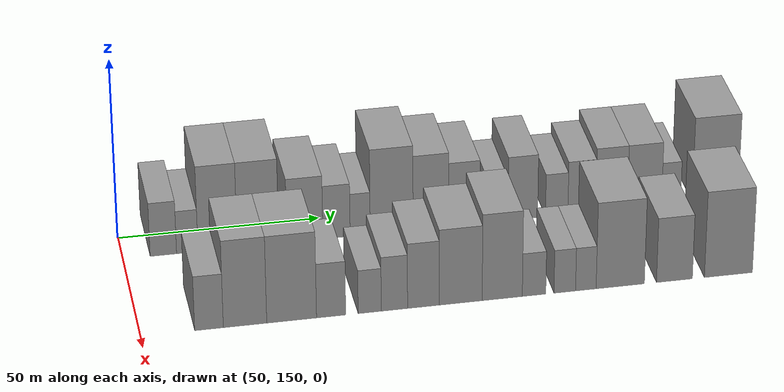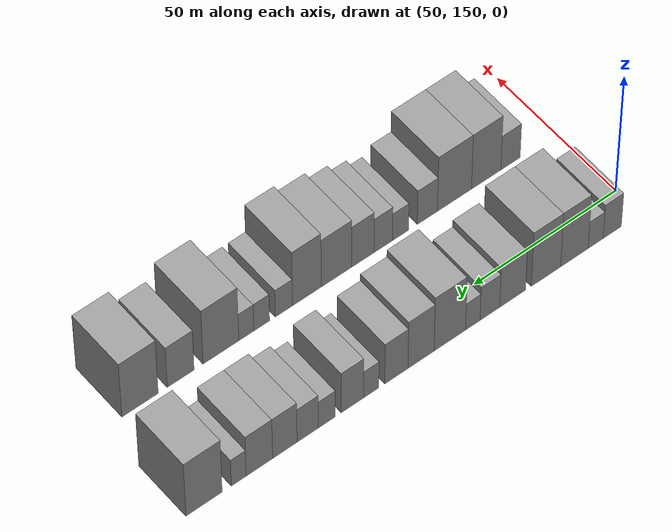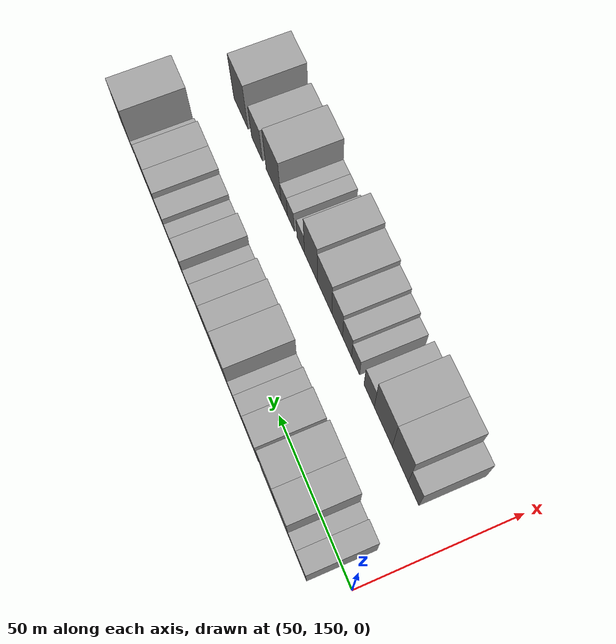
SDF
<sdf version="1.6">
 <world name="default">
  <model name="building_49">
   <static>1</static>
   <pose>50.0000 159.9098 0 0.000000 0.000000 0.000000</pose>
   <link name="link">
    <pose>0 0 7.50 0 0 0</pose>
    <collision name="collision"><geometry><box><size>20.0000 6.4904 15.0000</size></box></geometry></collision>
    <visual name="visual">
     <cast_shadows>0</cast_shadows>
     <geometry><box><size>20.0000 6.4904 15.0000</size></box></geometry>
     <material>
      <script>
       <uri>model://grey_wall/materials/scripts</uri>
       <uri>model://grey_wall/materials/textures</uri>
       <name>vrc/grey_wall</name>
      </script>
     </material>
    </visual>
   </link>
  </model>
  <model name="building_50">
   <static>1</static>
   <pose>50.0000 165.7924 0 0.000000 0.000000 0.000000</pose>
   <link name="link">
    <pose>0 0 6.00 0 0 0</pose>
    <collision name="collision"><geometry><box><size>20.0000 5.2749 12.0000</size></box></geometry></collision>
    <visual name="visual">
     <cast_shadows>0</cast_shadows>
     <geometry><box><size>20.0000 5.2749 12.0000</size></box></geometry>
     <material>
      <script>
       <uri>model://grey_wall/materials/scripts</uri>
       <uri>model://grey_wall/materials/textures</uri>
       <name>vrc/grey_wall</name>
      </script>
     </material>
    </visual>
   </link>
  </model>
  <model name="building_51">
   <static>1</static>
   <pose>50.0000 173.2698 0 0.000000 0.000000 0.000000</pose>
   <link name="link">
    <pose>0 0 12.00 0 0 0</pose>
    <collision name="collision"><geometry><box><size>20.0000 9.6800 24.0000</size></box></geometry></collision>
    <visual name="visual">
     <cast_shadows>0</cast_shadows>
     <geometry><box><size>20.0000 9.6800 24.0000</size></box></geometry>
     <material>
      <script>
       <uri>model://grey_wall/materials/scripts</uri>
       <uri>model://grey_wall/materials/textures</uri>
       <name>vrc/grey_wall</name>
      </script>
     </material>
    </visual>
   </link>
  </model>
  <model name="building_52">
   <static>1</static>
   <pose>50.0000 183.2570 0 0.000000 0.000000 0.000000</pose>
   <link name="link">
    <pose>0 0 12.00 0 0 0</pose>
    <collision name="collision"><geometry><box><size>20.0000 10.2944 24.0000</size></box></geometry></collision>
    <visual name="visual">
     <cast_shadows>0</cast_shadows>
     <geometry><box><size>20.0000 10.2944 24.0000</size></box></geometry>
     <material>
      <script>
       <uri>model://grey_wall/materials/scripts</uri>
       <uri>model://grey_wall/materials/textures</uri>
       <name>vrc/grey_wall</name>
      </script>
     </material>
    </visual>
   </link>
  </model>
  <model name="building_53">
   <static>1</static>
   <pose>50.0000 194.8930 0 0.000000 0.000000 0.000000</pose>
   <link name="link">
    <pose>0 0 9.00 0 0 0</pose>
    <collision name="collision"><geometry><box><size>20.0000 8.9776 18.0000</size></box></geometry></collision>
    <visual name="visual">
     <cast_shadows>0</cast_shadows>
     <geometry><box><size>20.0000 8.9776 18.0000</size></box></geometry>
     <material>
      <script>
       <uri>model://grey_wall/materials/scripts</uri>
       <uri>model://grey_wall/materials/textures</uri>
       <name>vrc/grey_wall</name>
      </script>
     </material>
    </visual>
   </link>
  </model>
  <model name="building_54">
   <static>1</static>
   <pose>50.0000 202.7825 0 0.000000 0.000000 0.000000</pose>
   <link name="link">
    <pose>0 0 7.50 0 0 0</pose>
    <collision name="collision"><geometry><box><size>20.0000 6.8014 15.0000</size></box></geometry></collision>
    <visual name="visual">
     <cast_shadows>0</cast_shadows>
     <geometry><box><size>20.0000 6.8014 15.0000</size></box></geometry>
     <material>
      <script>
       <uri>model://grey_wall/materials/scripts</uri>
       <uri>model://grey_wall/materials/textures</uri>
       <name>vrc/grey_wall</name>
      </script>
     </material>
    </visual>
   </link>
  </model>
  <model name="building_55">
   <static>1</static>
   <pose>50.0000 208.6903 0 0.000000 0.000000 0.000000</pose>
   <link name="link">
    <pose>0 0 6.00 0 0 0</pose>
    <collision name="collision"><geometry><box><size>20.0000 5.0142 12.0000</size></box></geometry></collision>
    <visual name="visual">
     <cast_shadows>0</cast_shadows>
     <geometry><box><size>20.0000 5.0142 12.0000</size></box></geometry>
     <material>
      <script>
       <uri>model://grey_wall/materials/scripts</uri>
       <uri>model://grey_wall/materials/textures</uri>
       <name>vrc/grey_wall</name>
      </script>
     </material>
    </visual>
   </link>
  </model>
  <model name="building_56">
   <static>1</static>
   <pose>50.0000 216.5766 0 0.000000 0.000000 0.000000</pose>
   <link name="link">
    <pose>0 0 12.00 0 0 0</pose>
    <collision name="collision"><geometry><box><size>20.0000 10.7585 24.0000</size></box></geometry></collision>
    <visual name="visual">
     <cast_shadows>0</cast_shadows>
     <geometry><box><size>20.0000 10.7585 24.0000</size></box></geometry>
     <material>
      <script>
       <uri>model://grey_wall/materials/scripts</uri>
       <uri>model://grey_wall/materials/textures</uri>
       <name>vrc/grey_wall</name>
      </script>
     </material>
    </visual>
   </link>
  </model>
  <model name="building_57">
   <static>1</static>
   <pose>50.0000 226.4314 0 0.000000 0.000000 0.000000</pose>
   <link name="link">
    <pose>0 0 10.50 0 0 0</pose>
    <collision name="collision"><geometry><box><size>20.0000 8.9510 21.0000</size></box></geometry></collision>
    <visual name="visual">
     <cast_shadows>0</cast_shadows>
     <geometry><box><size>20.0000 8.9510 21.0000</size></box></geometry>
     <material>
      <script>
       <uri>model://grey_wall/materials/scripts</uri>
       <uri>model://grey_wall/materials/textures</uri>
       <name>vrc/grey_wall</name>
      </script>
     </material>
    </visual>
   </link>
  </model>
  <model name="building_58">
   <static>1</static>
   <pose>50.0000 234.8425 0 0.000000 0.000000 0.000000</pose>
   <link name="link">
    <pose>0 0 9.00 0 0 0</pose>
    <collision name="collision"><geometry><box><size>20.0000 7.8712 18.0000</size></box></geometry></collision>
    <visual name="visual">
     <cast_shadows>0</cast_shadows>
     <geometry><box><size>20.0000 7.8712 18.0000</size></box></geometry>
     <material>
      <script>
       <uri>model://grey_wall/materials/scripts</uri>
       <uri>model://grey_wall/materials/textures</uri>
       <name>vrc/grey_wall</name>
      </script>
     </material>
    </visual>
   </link>
  </model>
  <model name="building_59">
   <static>1</static>
   <pose>50.0000 243.3342 0 0.000000 0.000000 0.000000</pose>
   <link name="link">
    <pose>0 0 6.00 0 0 0</pose>
    <collision name="collision"><geometry><box><size>20.0000 5.1123 12.0000</size></box></geometry></collision>
    <visual name="visual">
     <cast_shadows>0</cast_shadows>
     <geometry><box><size>20.0000 5.1123 12.0000</size></box></geometry>
     <material>
      <script>
       <uri>model://grey_wall/materials/scripts</uri>
       <uri>model://grey_wall/materials/textures</uri>
       <name>vrc/grey_wall</name>
      </script>
     </material>
    </visual>
   </link>
  </model>
  <model name="building_60">
   <static>1</static>
   <pose>50.0000 249.6590 0 0.000000 0.000000 0.000000</pose>
   <link name="link">
    <pose>0 0 9.00 0 0 0</pose>
    <collision name="collision"><geometry><box><size>20.0000 7.5372 18.0000</size></box></geometry></collision>
    <visual name="visual">
     <cast_shadows>0</cast_shadows>
     <geometry><box><size>20.0000 7.5372 18.0000</size></box></geometry>
     <material>
      <script>
       <uri>model://grey_wall/materials/scripts</uri>
       <uri>model://grey_wall/materials/textures</uri>
       <name>vrc/grey_wall</name>
      </script>
     </material>
    </visual>
   </link>
  </model>
  <model name="building_61">
   <static>1</static>
   <pose>50.0000 258.2725 0 0.000000 0.000000 0.000000</pose>
   <link name="link">
    <pose>0 0 6.00 0 0 0</pose>
    <collision name="collision"><geometry><box><size>20.0000 5.6899 12.0000</size></box></geometry></collision>
    <visual name="visual">
     <cast_shadows>0</cast_shadows>
     <geometry><box><size>20.0000 5.6899 12.0000</size></box></geometry>
     <material>
      <script>
       <uri>model://grey_wall/materials/scripts</uri>
       <uri>model://grey_wall/materials/textures</uri>
       <name>vrc/grey_wall</name>
      </script>
     </material>
    </visual>
   </link>
  </model>
  <model name="building_62">
   <static>1</static>
   <pose>50.0000 264.6710 0 0.000000 0.000000 0.000000</pose>
   <link name="link">
    <pose>0 0 7.50 0 0 0</pose>
    <collision name="collision"><geometry><box><size>20.0000 7.1070 15.0000</size></box></geometry></collision>
    <visual name="visual">
     <cast_shadows>0</cast_shadows>
     <geometry><box><size>20.0000 7.1070 15.0000</size></box></geometry>
     <material>
      <script>
       <uri>model://grey_wall/materials/scripts</uri>
       <uri>model://grey_wall/materials/textures</uri>
       <name>vrc/grey_wall</name>
      </script>
     </material>
    </visual>
   </link>
  </model>
  <model name="building_63">
   <static>1</static>
   <pose>50.0000 272.2900 0 0.000000 0.000000 0.000000</pose>
   <link name="link">
    <pose>0 0 9.00 0 0 0</pose>
    <collision name="collision"><geometry><box><size>20.0000 8.1312 18.0000</size></box></geometry></collision>
    <visual name="visual">
     <cast_shadows>0</cast_shadows>
     <geometry><box><size>20.0000 8.1312 18.0000</size></box></geometry>
     <material>
      <script>
       <uri>model://grey_wall/materials/scripts</uri>
       <uri>model://grey_wall/materials/textures</uri>
       <name>vrc/grey_wall</name>
      </script>
     </material>
    </visual>
   </link>
  </model>
  <model name="building_64">
   <static>1</static>
   <pose>50.0000 280.7285 0 0.000000 0.000000 0.000000</pose>
   <link name="link">
    <pose>0 0 9.00 0 0 0</pose>
    <collision name="collision"><geometry><box><size>20.0000 8.7458 18.0000</size></box></geometry></collision>
    <visual name="visual">
     <cast_shadows>0</cast_shadows>
     <geometry><box><size>20.0000 8.7458 18.0000</size></box></geometry>
     <material>
      <script>
       <uri>model://grey_wall/materials/scripts</uri>
       <uri>model://grey_wall/materials/textures</uri>
       <name>vrc/grey_wall</name>
      </script>
     </material>
    </visual>
   </link>
  </model>
  <model name="building_65">
   <static>1</static>
   <pose>50.0000 287.5480 0 0.000000 0.000000 0.000000</pose>
   <link name="link">
    <pose>0 0 6.00 0 0 0</pose>
    <collision name="collision"><geometry><box><size>20.0000 4.8931 12.0000</size></box></geometry></collision>
    <visual name="visual">
     <cast_shadows>0</cast_shadows>
     <geometry><box><size>20.0000 4.8931 12.0000</size></box></geometry>
     <material>
      <script>
       <uri>model://grey_wall/materials/scripts</uri>
       <uri>model://grey_wall/materials/textures</uri>
       <name>vrc/grey_wall</name>
      </script>
     </material>
    </visual>
   </link>
  </model>
  <model name="building_66">
   <static>1</static>
   <pose>50.0000 298.9253 0 0.000000 0.000000 0.000000</pose>
   <link name="link">
    <pose>0 0 12.00 0 0 0</pose>
    <collision name="collision"><geometry><box><size>20.0000 11.8617 24.0000</size></box></geometry></collision>
    <visual name="visual">
     <cast_shadows>0</cast_shadows>
     <geometry><box><size>20.0000 11.8617 24.0000</size></box></geometry>
     <material>
      <script>
       <uri>model://grey_wall/materials/scripts</uri>
       <uri>model://grey_wall/materials/textures</uri>
       <name>vrc/grey_wall</name>
      </script>
     </material>
    </visual>
   </link>
  </model>
  <model name="building_118">
   <static>1</static>
   <pose>85.0000 166.2771 0 0.000000 0.000000 0.000000</pose>
   <link name="link">
    <pose>0 0 7.50 0 0 0</pose>
    <collision name="collision"><geometry><box><size>20.0000 6.8299 15.0000</size></box></geometry></collision>
    <visual name="visual">
     <cast_shadows>0</cast_shadows>
     <geometry><box><size>20.0000 6.8299 15.0000</size></box></geometry>
     <material>
      <script>
       <uri>model://grey_wall/materials/scripts</uri>
       <uri>model://grey_wall/materials/textures</uri>
       <name>vrc/grey_wall</name>
      </script>
     </material>
    </visual>
   </link>
  </model>
  <model name="building_119">
   <static>1</static>
   <pose>85.0000 174.8830 0 0.000000 0.000000 0.000000</pose>
   <link name="link">
    <pose>0 0 12.00 0 0 0</pose>
    <collision name="collision"><geometry><box><size>20.0000 10.3820 24.0000</size></box></geometry></collision>
    <visual name="visual">
     <cast_shadows>0</cast_shadows>
     <geometry><box><size>20.0000 10.3820 24.0000</size></box></geometry>
     <material>
      <script>
       <uri>model://grey_wall/materials/scripts</uri>
       <uri>model://grey_wall/materials/textures</uri>
       <name>vrc/grey_wall</name>
      </script>
     </material>
    </visual>
   </link>
  </model>
  <model name="building_120">
   <static>1</static>
   <pose>85.0000 186.0519 0 0.000000 0.000000 0.000000</pose>
   <link name="link">
    <pose>0 0 12.00 0 0 0</pose>
    <collision name="collision"><geometry><box><size>20.0000 11.9559 24.0000</size></box></geometry></collision>
    <visual name="visual">
     <cast_shadows>0</cast_shadows>
     <geometry><box><size>20.0000 11.9559 24.0000</size></box></geometry>
     <material>
      <script>
       <uri>model://grey_wall/materials/scripts</uri>
       <uri>model://grey_wall/materials/textures</uri>
       <name>vrc/grey_wall</name>
      </script>
     </material>
    </visual>
   </link>
  </model>
  <model name="building_121">
   <static>1</static>
   <pose>85.0000 195.5482 0 0.000000 0.000000 0.000000</pose>
   <link name="link">
    <pose>0 0 7.50 0 0 0</pose>
    <collision name="collision"><geometry><box><size>20.0000 7.0367 15.0000</size></box></geometry></collision>
    <visual name="visual">
     <cast_shadows>0</cast_shadows>
     <geometry><box><size>20.0000 7.0367 15.0000</size></box></geometry>
     <material>
      <script>
       <uri>model://grey_wall/materials/scripts</uri>
       <uri>model://grey_wall/materials/textures</uri>
       <name>vrc/grey_wall</name>
      </script>
     </material>
    </visual>
   </link>
  </model>
  <model name="building_122">
   <static>1</static>
   <pose>85.0000 204.8581 0 0.000000 0.000000 0.000000</pose>
   <link name="link">
    <pose>0 0 6.00 0 0 0</pose>
    <collision name="collision"><geometry><box><size>20.0000 5.5830 12.0000</size></box></geometry></collision>
    <visual name="visual">
     <cast_shadows>0</cast_shadows>
     <geometry><box><size>20.0000 5.5830 12.0000</size></box></geometry>
     <material>
      <script>
       <uri>model://grey_wall/materials/scripts</uri>
       <uri>model://grey_wall/materials/textures</uri>
       <name>vrc/grey_wall</name>
      </script>
     </material>
    </visual>
   </link>
  </model>
  <model name="building_123">
   <static>1</static>
   <pose>85.0000 210.8337 0 0.000000 0.000000 0.000000</pose>
   <link name="link">
    <pose>0 0 7.50 0 0 0</pose>
    <collision name="collision"><geometry><box><size>20.0000 6.3683 15.0000</size></box></geometry></collision>
    <visual name="visual">
     <cast_shadows>0</cast_shadows>
     <geometry><box><size>20.0000 6.3683 15.0000</size></box></geometry>
     <material>
      <script>
       <uri>model://grey_wall/materials/scripts</uri>
       <uri>model://grey_wall/materials/textures</uri>
       <name>vrc/grey_wall</name>
      </script>
     </material>
    </visual>
   </link>
  </model>
  <model name="building_124">
   <static>1</static>
   <pose>85.0000 217.8552 0 0.000000 0.000000 0.000000</pose>
   <link name="link">
    <pose>0 0 9.00 0 0 0</pose>
    <collision name="collision"><geometry><box><size>20.0000 7.6747 18.0000</size></box></geometry></collision>
    <visual name="visual">
     <cast_shadows>0</cast_shadows>
     <geometry><box><size>20.0000 7.6747 18.0000</size></box></geometry>
     <material>
      <script>
       <uri>model://grey_wall/materials/scripts</uri>
       <uri>model://grey_wall/materials/textures</uri>
       <name>vrc/grey_wall</name>
      </script>
     </material>
    </visual>
   </link>
  </model>
  <model name="building_125">
   <static>1</static>
   <pose>85.0000 226.9395 0 0.000000 0.000000 0.000000</pose>
   <link name="link">
    <pose>0 0 10.50 0 0 0</pose>
    <collision name="collision"><geometry><box><size>20.0000 10.4938 21.0000</size></box></geometry></collision>
    <visual name="visual">
     <cast_shadows>0</cast_shadows>
     <geometry><box><size>20.0000 10.4938 21.0000</size></box></geometry>
     <material>
      <script>
       <uri>model://grey_wall/materials/scripts</uri>
       <uri>model://grey_wall/materials/textures</uri>
       <name>vrc/grey_wall</name>
      </script>
     </material>
    </visual>
   </link>
  </model>
  <model name="building_126">
   <static>1</static>
   <pose>85.0000 237.0971 0 0.000000 0.000000 0.000000</pose>
   <link name="link">
    <pose>0 0 12.00 0 0 0</pose>
    <collision name="collision"><geometry><box><size>20.0000 9.8214 24.0000</size></box></geometry></collision>
    <visual name="visual">
     <cast_shadows>0</cast_shadows>
     <geometry><box><size>20.0000 9.8214 24.0000</size></box></geometry>
     <material>
      <script>
       <uri>model://grey_wall/materials/scripts</uri>
       <uri>model://grey_wall/materials/textures</uri>
       <name>vrc/grey_wall</name>
      </script>
     </material>
    </visual>
   </link>
  </model>
  <model name="building_127">
   <static>1</static>
   <pose>85.0000 244.8953 0 0.000000 0.000000 0.000000</pose>
   <link name="link">
    <pose>0 0 6.00 0 0 0</pose>
    <collision name="collision"><geometry><box><size>20.0000 5.7750 12.0000</size></box></geometry></collision>
    <visual name="visual">
     <cast_shadows>0</cast_shadows>
     <geometry><box><size>20.0000 5.7750 12.0000</size></box></geometry>
     <material>
      <script>
       <uri>model://grey_wall/materials/scripts</uri>
       <uri>model://grey_wall/materials/textures</uri>
       <name>vrc/grey_wall</name>
      </script>
     </material>
    </visual>
   </link>
  </model>
  <model name="building_128">
   <static>1</static>
   <pose>85.0000 252.4363 0 0.000000 0.000000 0.000000</pose>
   <link name="link">
    <pose>0 0 6.00 0 0 0</pose>
    <collision name="collision"><geometry><box><size>20.0000 5.3071 12.0000</size></box></geometry></collision>
    <visual name="visual">
     <cast_shadows>0</cast_shadows>
     <geometry><box><size>20.0000 5.3071 12.0000</size></box></geometry>
     <material>
      <script>
       <uri>model://grey_wall/materials/scripts</uri>
       <uri>model://grey_wall/materials/textures</uri>
       <name>vrc/grey_wall</name>
      </script>
     </material>
    </visual>
   </link>
  </model>
  <model name="building_129">
   <static>1</static>
   <pose>85.0000 257.6252 0 0.000000 0.000000 0.000000</pose>
   <link name="link">
    <pose>0 0 6.00 0 0 0</pose>
    <collision name="collision"><geometry><box><size>20.0000 5.0706 12.0000</size></box></geometry></collision>
    <visual name="visual">
     <cast_shadows>0</cast_shadows>
     <geometry><box><size>20.0000 5.0706 12.0000</size></box></geometry>
     <material>
      <script>
       <uri>model://grey_wall/materials/scripts</uri>
       <uri>model://grey_wall/materials/textures</uri>
       <name>vrc/grey_wall</name>
      </script>
     </material>
    </visual>
   </link>
  </model>
  <model name="building_130">
   <static>1</static>
   <pose>85.0000 266.1334 0 0.000000 0.000000 0.000000</pose>
   <link name="link">
    <pose>0 0 12.00 0 0 0</pose>
    <collision name="collision"><geometry><box><size>20.0000 11.9459 24.0000</size></box></geometry></collision>
    <visual name="visual">
     <cast_shadows>0</cast_shadows>
     <geometry><box><size>20.0000 11.9459 24.0000</size></box></geometry>
     <material>
      <script>
       <uri>model://grey_wall/materials/scripts</uri>
       <uri>model://grey_wall/materials/textures</uri>
       <name>vrc/grey_wall</name>
      </script>
     </material>
    </visual>
   </link>
  </model>
  <model name="building_131">
   <static>1</static>
   <pose>85.0000 279.5695 0 0.000000 0.000000 0.000000</pose>
   <link name="link">
    <pose>0 0 9.00 0 0 0</pose>
    <collision name="collision"><geometry><box><size>20.0000 8.9263 18.0000</size></box></geometry></collision>
    <visual name="visual">
     <cast_shadows>0</cast_shadows>
     <geometry><box><size>20.0000 8.9263 18.0000</size></box></geometry>
     <material>
      <script>
       <uri>model://grey_wall/materials/scripts</uri>
       <uri>model://grey_wall/materials/textures</uri>
       <name>vrc/grey_wall</name>
      </script>
     </material>
    </visual>
   </link>
  </model>
  <model name="building_132">
   <static>1</static>
   <pose>85.0000 293.0216 0 0.000000 0.000000 0.000000</pose>
   <link name="link">
    <pose>0 0 12.00 0 0 0</pose>
    <collision name="collision"><geometry><box><size>20.0000 11.9780 24.0000</size></box></geometry></collision>
    <visual name="visual">
     <cast_shadows>0</cast_shadows>
     <geometry><box><size>20.0000 11.9780 24.0000</size></box></geometry>
     <material>
      <script>
       <uri>model://grey_wall/materials/scripts</uri>
       <uri>model://grey_wall/materials/textures</uri>
       <name>vrc/grey_wall</name>
      </script>
     </material>
    </visual>
   </link>
  </model>
 </world>
</sdf>
